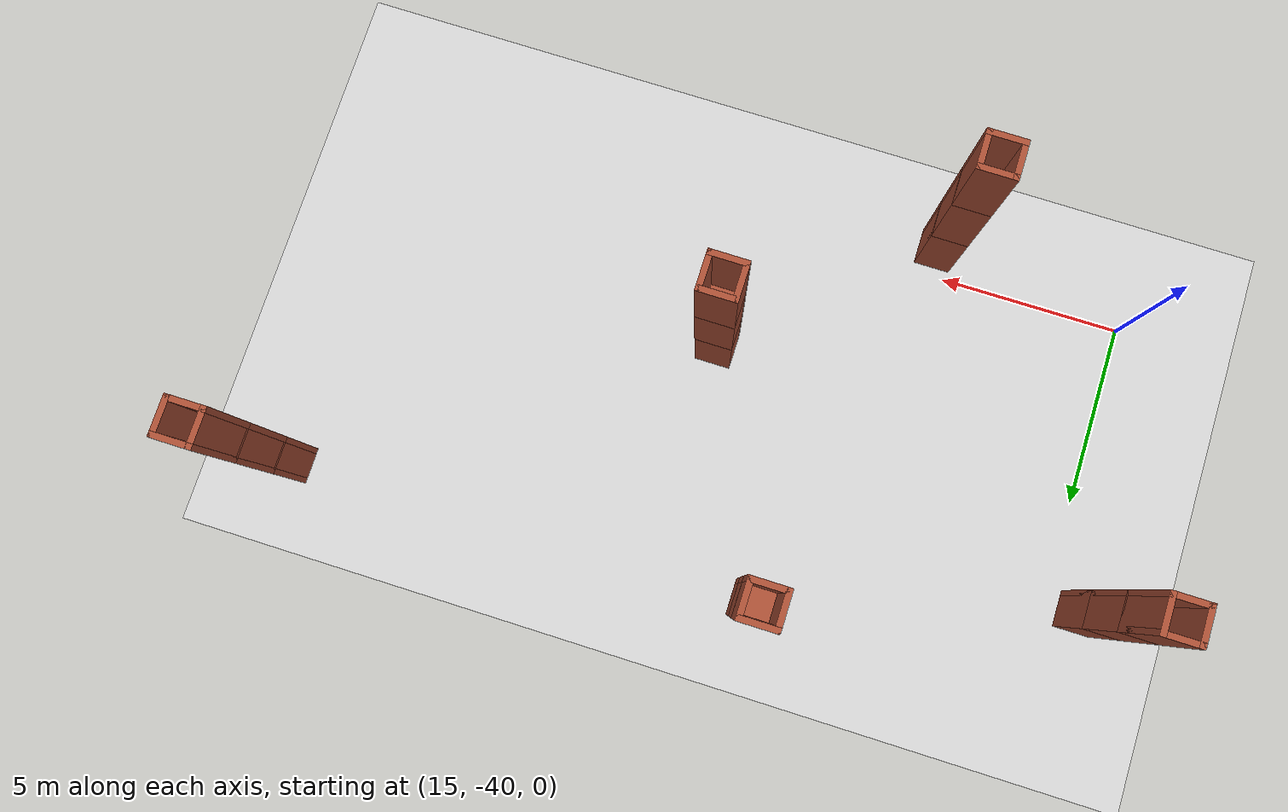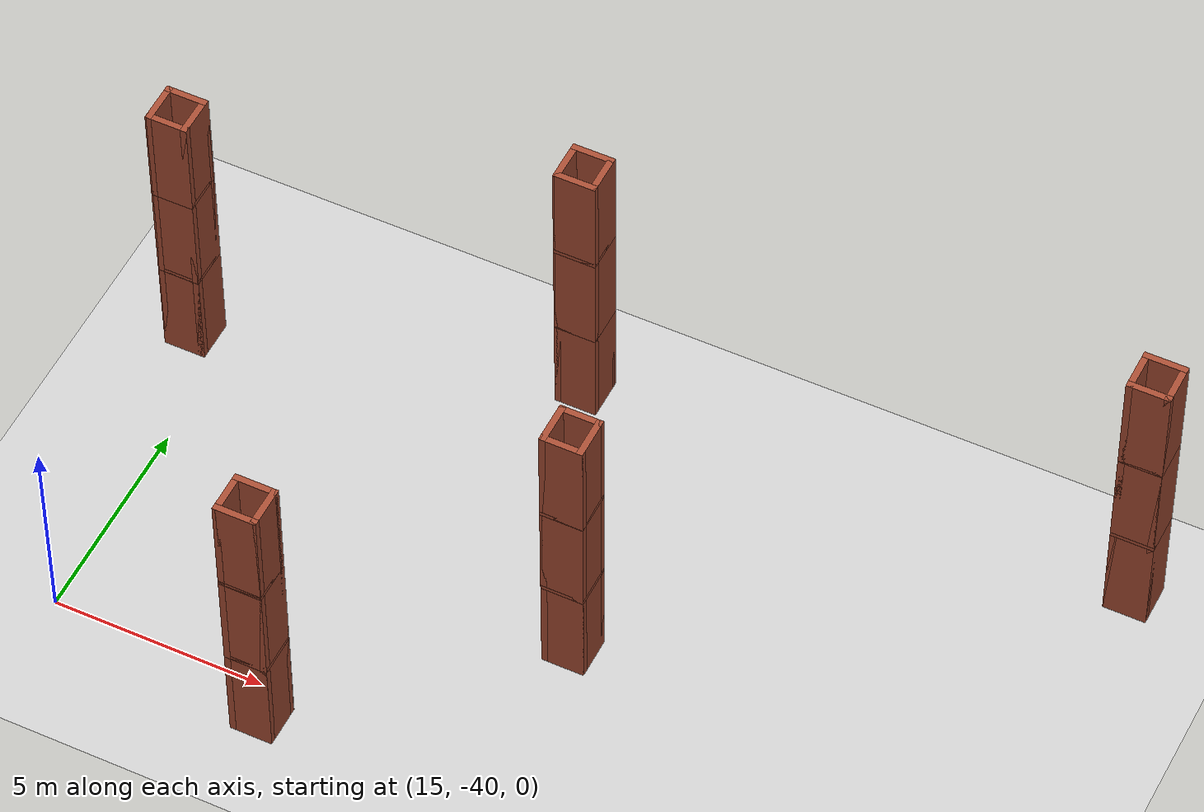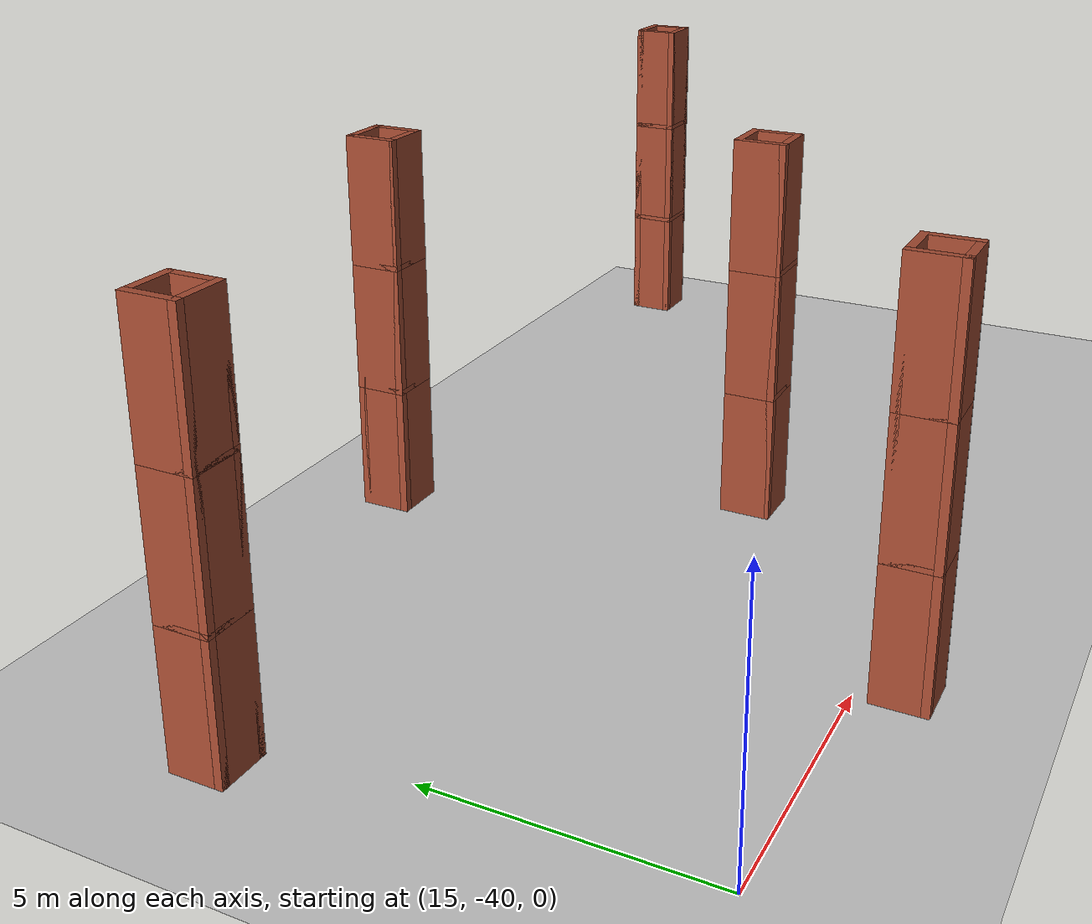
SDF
<sdf version="1.7">
 <world name="default">
  <model name="ground_plane">
   <static>1</static>
   <link name="link">
    <collision name="collision">
     <geometry><plane><normal>0 0 1</normal><size>100 100</size></plane></geometry>
     <surface>
      <contact><collide_bitmask>65535</collide_bitmask></contact>
      <friction><ode><mu>100</mu><mu2>50</mu2></ode></friction>
     </surface>
    </collision>
    <visual name="visual">
     <cast_shadows>0</cast_shadows>
     <geometry><plane><normal>0 0 1</normal><size>100 100</size></plane></geometry>
     <material>
      <script><uri>file://media/materials/scripts/gazebo.material</uri><name>Gazebo/Grey</name></script>
     </material>
    </visual>
   </link>
  </model>
  <model name="wall_model_clone_8">
   <pose>17.3275 -32.746 0 0 -0 0</pose>
   <link name="Floor_3">
    <collision name="Floor_3_Collision">
     <geometry><box><size>1 1 0.1</size></box></geometry>
     <pose>0 0 0.05 0 -0 0</pose>
    </collision>
    <visual name="Floor_3_Visual">
     <pose>0 0 0.05 0 -0 0</pose>
     <geometry><box><size>1 1 0.1</size></box></geometry>
     <material>
      <script><uri>file://media/materials/scripts/gazebo.material</uri><name>Gazebo/Bricks</name></script>
      <ambient>1 1 1 1</ambient>
     </material>
     <meta><layer>1</layer></meta>
    </visual>
    <pose>-3.21504 0.623396 2.5 0 -0 0</pose>
   </link>
   <link name="Floor_4">
    <collision name="Floor_4_Collision">
     <geometry><box><size>1 1 0.1</size></box></geometry>
     <pose>0 0 0.05 0 -0 0</pose>
    </collision>
    <visual name="Floor_4_Visual">
     <pose>0 0 0.05 0 -0 0</pose>
     <geometry><box><size>1 1 0.1</size></box></geometry>
     <material>
      <script><uri>file://media/materials/scripts/gazebo.material</uri><name>Gazebo/Bricks</name></script>
      <ambient>1 1 1 1</ambient>
     </material>
     <meta><layer>2</layer></meta>
    </visual>
    <pose>-3.21504 0.623396 5 0 -0 0</pose>
   </link>
   <link name="Wall_19">
    <collision name="Wall_19_Collision">
     <geometry><box><size>1 0.15 2.5</size></box></geometry>
     <pose>0 0 1.25 0 -0 0</pose>
    </collision>
    <visual name="Wall_19_Visual">
     <pose>0 0 1.25 0 -0 0</pose>
     <geometry><box><size>1 0.15 2.5</size></box></geometry>
     <material>
      <script><uri>file://media/materials/scripts/gazebo.material</uri><name>Gazebo/Bricks</name></script>
      <ambient>1 1 1 1</ambient>
     </material>
     <meta><layer>0</layer></meta>
    </visual>
    <pose>-3.64004 0.623396 0 0 -0 1.5708</pose>
   </link>
   <link name="Wall_21">
    <collision name="Wall_21_Collision">
     <geometry><box><size>1 0.15 2.5</size></box></geometry>
     <pose>0 0 1.25 0 -0 0</pose>
    </collision>
    <visual name="Wall_21_Visual">
     <pose>0 0 1.25 0 -0 0</pose>
     <geometry><box><size>1 0.15 2.5</size></box></geometry>
     <material>
      <script><uri>file://media/materials/scripts/gazebo.material</uri><name>Gazebo/Bricks</name></script>
      <ambient>1 1 1 1</ambient>
     </material>
     <meta><layer>0</layer></meta>
    </visual>
    <pose>-3.21504 1.0484 0 0 -0 0</pose>
   </link>
   <link name="Wall_22">
    <collision name="Wall_22_Collision">
     <geometry><box><size>1 0.15 2.5</size></box></geometry>
     <pose>0 0 1.25 0 -0 0</pose>
    </collision>
    <visual name="Wall_22_Visual">
     <pose>0 0 1.25 0 -0 0</pose>
     <geometry><box><size>1 0.15 2.5</size></box></geometry>
     <material>
      <script><uri>file://media/materials/scripts/gazebo.material</uri><name>Gazebo/Bricks</name></script>
      <ambient>1 1 1 1</ambient>
     </material>
     <meta><layer>0</layer></meta>
    </visual>
    <pose>-2.79004 0.623396 0 0 -0 -1.5708</pose>
   </link>
   <link name="Wall_23">
    <collision name="Wall_23_Collision">
     <geometry><box><size>1 0.15 2.5</size></box></geometry>
     <pose>0 0 1.25 0 -0 0</pose>
    </collision>
    <visual name="Wall_23_Visual">
     <pose>0 0 1.25 0 -0 0</pose>
     <geometry><box><size>1 0.15 2.5</size></box></geometry>
     <material>
      <script><uri>file://media/materials/scripts/gazebo.material</uri><name>Gazebo/Bricks</name></script>
      <ambient>1 1 1 1</ambient>
     </material>
     <meta><layer>0</layer></meta>
    </visual>
    <pose>-3.21504 0.198396 0 0 -0 3.14159</pose>
   </link>
   <link name="Wall_25">
    <collision name="Wall_25_Collision">
     <geometry><box><size>1 0.15 2.5</size></box></geometry>
     <pose>0 0 1.25 0 -0 0</pose>
    </collision>
    <visual name="Wall_25_Visual">
     <pose>0 0 1.25 0 -0 0</pose>
     <geometry><box><size>1 0.15 2.5</size></box></geometry>
     <material>
      <script><uri>file://media/materials/scripts/gazebo.material</uri><name>Gazebo/Bricks</name></script>
      <ambient>1 1 1 1</ambient>
     </material>
     <meta><layer>1</layer></meta>
    </visual>
    <pose>-3.64004 0.623396 2.5 0 -0 1.5708</pose>
   </link>
   <link name="Wall_26">
    <collision name="Wall_26_Collision">
     <geometry><box><size>1 0.15 2.5</size></box></geometry>
     <pose>0 0 1.25 0 -0 0</pose>
    </collision>
    <visual name="Wall_26_Visual">
     <pose>0 0 1.25 0 -0 0</pose>
     <geometry><box><size>1 0.15 2.5</size></box></geometry>
     <material>
      <script><uri>file://media/materials/scripts/gazebo.material</uri><name>Gazebo/Bricks</name></script>
      <ambient>1 1 1 1</ambient>
     </material>
     <meta><layer>1</layer></meta>
    </visual>
    <pose>-3.21504 1.0484 2.5 0 -0 0</pose>
   </link>
   <link name="Wall_27">
    <collision name="Wall_27_Collision">
     <geometry><box><size>1 0.15 2.5</size></box></geometry>
     <pose>0 0 1.25 0 -0 0</pose>
    </collision>
    <visual name="Wall_27_Visual">
     <pose>0 0 1.25 0 -0 0</pose>
     <geometry><box><size>1 0.15 2.5</size></box></geometry>
     <material>
      <script><uri>file://media/materials/scripts/gazebo.material</uri><name>Gazebo/Bricks</name></script>
      <ambient>1 1 1 1</ambient>
     </material>
     <meta><layer>1</layer></meta>
    </visual>
    <pose>-2.79004 0.623396 2.5 0 -0 -1.5708</pose>
   </link>
   <link name="Wall_28">
    <collision name="Wall_28_Collision">
     <geometry><box><size>1 0.15 2.5</size></box></geometry>
     <pose>0 0 1.25 0 -0 0</pose>
    </collision>
    <visual name="Wall_28_Visual">
     <pose>0 0 1.25 0 -0 0</pose>
     <geometry><box><size>1 0.15 2.5</size></box></geometry>
     <material>
      <script><uri>file://media/materials/scripts/gazebo.material</uri><name>Gazebo/Bricks</name></script>
      <ambient>1 1 1 1</ambient>
     </material>
     <meta><layer>1</layer></meta>
    </visual>
    <pose>-3.21504 0.198396 2.5 0 -0 3.14159</pose>
   </link>
   <link name="Wall_29">
    <collision name="Wall_29_Collision">
     <geometry><box><size>1 0.15 2.5</size></box></geometry>
     <pose>0 0 1.25 0 -0 0</pose>
    </collision>
    <visual name="Wall_29_Visual">
     <pose>0 0 1.25 0 -0 0</pose>
     <geometry><box><size>1 0.15 2.5</size></box></geometry>
     <material>
      <script><uri>file://media/materials/scripts/gazebo.material</uri><name>Gazebo/Bricks</name></script>
      <ambient>1 1 1 1</ambient>
     </material>
     <meta><layer>2</layer></meta>
    </visual>
    <pose>-3.64004 0.623396 5 0 -0 1.5708</pose>
   </link>
   <link name="Wall_30">
    <collision name="Wall_30_Collision">
     <geometry><box><size>1 0.15 2.5</size></box></geometry>
     <pose>0 0 1.25 0 -0 0</pose>
    </collision>
    <visual name="Wall_30_Visual">
     <pose>0 0 1.25 0 -0 0</pose>
     <geometry><box><size>1 0.15 2.5</size></box></geometry>
     <material>
      <script><uri>file://media/materials/scripts/gazebo.material</uri><name>Gazebo/Bricks</name></script>
      <ambient>1 1 1 1</ambient>
     </material>
     <meta><layer>2</layer></meta>
    </visual>
    <pose>-3.21504 1.0484 5 0 -0 0</pose>
   </link>
   <link name="Wall_31">
    <collision name="Wall_31_Collision">
     <geometry><box><size>1 0.15 2.5</size></box></geometry>
     <pose>0 0 1.25 0 -0 0</pose>
    </collision>
    <visual name="Wall_31_Visual">
     <pose>0 0 1.25 0 -0 0</pose>
     <geometry><box><size>1 0.15 2.5</size></box></geometry>
     <material>
      <script><uri>file://media/materials/scripts/gazebo.material</uri><name>Gazebo/Bricks</name></script>
      <ambient>1 1 1 1</ambient>
     </material>
     <meta><layer>2</layer></meta>
    </visual>
    <pose>-2.79004 0.623396 5 0 -0 -1.5708</pose>
   </link>
   <link name="Wall_32">
    <collision name="Wall_32_Collision">
     <geometry><box><size>1 0.15 2.5</size></box></geometry>
     <pose>0 0 1.25 0 -0 0</pose>
    </collision>
    <visual name="Wall_32_Visual">
     <pose>0 0 1.25 0 -0 0</pose>
     <geometry><box><size>1 0.15 2.5</size></box></geometry>
     <material>
      <script><uri>file://media/materials/scripts/gazebo.material</uri><name>Gazebo/Bricks</name></script>
      <ambient>1 1 1 1</ambient>
     </material>
     <meta><layer>2</layer></meta>
    </visual>
    <pose>-3.21504 0.198396 5 0 -0 3.14159</pose>
   </link>
   <static>1</static>
  </model>
  <model name="wall_model_clone_17">
   <pose>25.8352 -30.414 0 0 -0 0</pose>
   <link name="Floor_3">
    <collision name="Floor_3_Collision">
     <geometry><box><size>1 1 0.1</size></box></geometry>
     <pose>0 0 0.05 0 -0 0</pose>
    </collision>
    <visual name="Floor_3_Visual">
     <pose>0 0 0.05 0 -0 0</pose>
     <geometry><box><size>1 1 0.1</size></box></geometry>
     <material>
      <script><uri>file://media/materials/scripts/gazebo.material</uri><name>Gazebo/Bricks</name></script>
      <ambient>1 1 1 1</ambient>
     </material>
     <meta><layer>1</layer></meta>
    </visual>
    <pose>-3.21504 0.623396 2.5 0 -0 0</pose>
   </link>
   <link name="Floor_4">
    <collision name="Floor_4_Collision">
     <geometry><box><size>1 1 0.1</size></box></geometry>
     <pose>0 0 0.05 0 -0 0</pose>
    </collision>
    <visual name="Floor_4_Visual">
     <pose>0 0 0.05 0 -0 0</pose>
     <geometry><box><size>1 1 0.1</size></box></geometry>
     <material>
      <script><uri>file://media/materials/scripts/gazebo.material</uri><name>Gazebo/Bricks</name></script>
      <ambient>1 1 1 1</ambient>
     </material>
     <meta><layer>2</layer></meta>
    </visual>
    <pose>-3.21504 0.623396 5 0 -0 0</pose>
   </link>
   <link name="Wall_19">
    <collision name="Wall_19_Collision">
     <geometry><box><size>1 0.15 2.5</size></box></geometry>
     <pose>0 0 1.25 0 -0 0</pose>
    </collision>
    <visual name="Wall_19_Visual">
     <pose>0 0 1.25 0 -0 0</pose>
     <geometry><box><size>1 0.15 2.5</size></box></geometry>
     <material>
      <script><uri>file://media/materials/scripts/gazebo.material</uri><name>Gazebo/Bricks</name></script>
      <ambient>1 1 1 1</ambient>
     </material>
     <meta><layer>0</layer></meta>
    </visual>
    <pose>-3.64004 0.623396 0 0 -0 1.5708</pose>
   </link>
   <link name="Wall_21">
    <collision name="Wall_21_Collision">
     <geometry><box><size>1 0.15 2.5</size></box></geometry>
     <pose>0 0 1.25 0 -0 0</pose>
    </collision>
    <visual name="Wall_21_Visual">
     <pose>0 0 1.25 0 -0 0</pose>
     <geometry><box><size>1 0.15 2.5</size></box></geometry>
     <material>
      <script><uri>file://media/materials/scripts/gazebo.material</uri><name>Gazebo/Bricks</name></script>
      <ambient>1 1 1 1</ambient>
     </material>
     <meta><layer>0</layer></meta>
    </visual>
    <pose>-3.21504 1.0484 0 0 -0 0</pose>
   </link>
   <link name="Wall_22">
    <collision name="Wall_22_Collision">
     <geometry><box><size>1 0.15 2.5</size></box></geometry>
     <pose>0 0 1.25 0 -0 0</pose>
    </collision>
    <visual name="Wall_22_Visual">
     <pose>0 0 1.25 0 -0 0</pose>
     <geometry><box><size>1 0.15 2.5</size></box></geometry>
     <material>
      <script><uri>file://media/materials/scripts/gazebo.material</uri><name>Gazebo/Bricks</name></script>
      <ambient>1 1 1 1</ambient>
     </material>
     <meta><layer>0</layer></meta>
    </visual>
    <pose>-2.79004 0.623396 0 0 -0 -1.5708</pose>
   </link>
   <link name="Wall_23">
    <collision name="Wall_23_Collision">
     <geometry><box><size>1 0.15 2.5</size></box></geometry>
     <pose>0 0 1.25 0 -0 0</pose>
    </collision>
    <visual name="Wall_23_Visual">
     <pose>0 0 1.25 0 -0 0</pose>
     <geometry><box><size>1 0.15 2.5</size></box></geometry>
     <material>
      <script><uri>file://media/materials/scripts/gazebo.material</uri><name>Gazebo/Bricks</name></script>
      <ambient>1 1 1 1</ambient>
     </material>
     <meta><layer>0</layer></meta>
    </visual>
    <pose>-3.21504 0.198396 0 0 -0 3.14159</pose>
   </link>
   <link name="Wall_25">
    <collision name="Wall_25_Collision">
     <geometry><box><size>1 0.15 2.5</size></box></geometry>
     <pose>0 0 1.25 0 -0 0</pose>
    </collision>
    <visual name="Wall_25_Visual">
     <pose>0 0 1.25 0 -0 0</pose>
     <geometry><box><size>1 0.15 2.5</size></box></geometry>
     <material>
      <script><uri>file://media/materials/scripts/gazebo.material</uri><name>Gazebo/Bricks</name></script>
      <ambient>1 1 1 1</ambient>
     </material>
     <meta><layer>1</layer></meta>
    </visual>
    <pose>-3.64004 0.623396 2.5 0 -0 1.5708</pose>
   </link>
   <link name="Wall_26">
    <collision name="Wall_26_Collision">
     <geometry><box><size>1 0.15 2.5</size></box></geometry>
     <pose>0 0 1.25 0 -0 0</pose>
    </collision>
    <visual name="Wall_26_Visual">
     <pose>0 0 1.25 0 -0 0</pose>
     <geometry><box><size>1 0.15 2.5</size></box></geometry>
     <material>
      <script><uri>file://media/materials/scripts/gazebo.material</uri><name>Gazebo/Bricks</name></script>
      <ambient>1 1 1 1</ambient>
     </material>
     <meta><layer>1</layer></meta>
    </visual>
    <pose>-3.21504 1.0484 2.5 0 -0 0</pose>
   </link>
   <link name="Wall_27">
    <collision name="Wall_27_Collision">
     <geometry><box><size>1 0.15 2.5</size></box></geometry>
     <pose>0 0 1.25 0 -0 0</pose>
    </collision>
    <visual name="Wall_27_Visual">
     <pose>0 0 1.25 0 -0 0</pose>
     <geometry><box><size>1 0.15 2.5</size></box></geometry>
     <material>
      <script><uri>file://media/materials/scripts/gazebo.material</uri><name>Gazebo/Bricks</name></script>
      <ambient>1 1 1 1</ambient>
     </material>
     <meta><layer>1</layer></meta>
    </visual>
    <pose>-2.79004 0.623396 2.5 0 -0 -1.5708</pose>
   </link>
   <link name="Wall_28">
    <collision name="Wall_28_Collision">
     <geometry><box><size>1 0.15 2.5</size></box></geometry>
     <pose>0 0 1.25 0 -0 0</pose>
    </collision>
    <visual name="Wall_28_Visual">
     <pose>0 0 1.25 0 -0 0</pose>
     <geometry><box><size>1 0.15 2.5</size></box></geometry>
     <material>
      <script><uri>file://media/materials/scripts/gazebo.material</uri><name>Gazebo/Bricks</name></script>
      <ambient>1 1 1 1</ambient>
     </material>
     <meta><layer>1</layer></meta>
    </visual>
    <pose>-3.21504 0.198396 2.5 0 -0 3.14159</pose>
   </link>
   <link name="Wall_29">
    <collision name="Wall_29_Collision">
     <geometry><box><size>1 0.15 2.5</size></box></geometry>
     <pose>0 0 1.25 0 -0 0</pose>
    </collision>
    <visual name="Wall_29_Visual">
     <pose>0 0 1.25 0 -0 0</pose>
     <geometry><box><size>1 0.15 2.5</size></box></geometry>
     <material>
      <script><uri>file://media/materials/scripts/gazebo.material</uri><name>Gazebo/Bricks</name></script>
      <ambient>1 1 1 1</ambient>
     </material>
     <meta><layer>2</layer></meta>
    </visual>
    <pose>-3.64004 0.623396 5 0 -0 1.5708</pose>
   </link>
   <link name="Wall_30">
    <collision name="Wall_30_Collision">
     <geometry><box><size>1 0.15 2.5</size></box></geometry>
     <pose>0 0 1.25 0 -0 0</pose>
    </collision>
    <visual name="Wall_30_Visual">
     <pose>0 0 1.25 0 -0 0</pose>
     <geometry><box><size>1 0.15 2.5</size></box></geometry>
     <material>
      <script><uri>file://media/materials/scripts/gazebo.material</uri><name>Gazebo/Bricks</name></script>
      <ambient>1 1 1 1</ambient>
     </material>
     <meta><layer>2</layer></meta>
    </visual>
    <pose>-3.21504 1.0484 5 0 -0 0</pose>
   </link>
   <link name="Wall_31">
    <collision name="Wall_31_Collision">
     <geometry><box><size>1 0.15 2.5</size></box></geometry>
     <pose>0 0 1.25 0 -0 0</pose>
    </collision>
    <visual name="Wall_31_Visual">
     <pose>0 0 1.25 0 -0 0</pose>
     <geometry><box><size>1 0.15 2.5</size></box></geometry>
     <material>
      <script><uri>file://media/materials/scripts/gazebo.material</uri><name>Gazebo/Bricks</name></script>
      <ambient>1 1 1 1</ambient>
     </material>
     <meta><layer>2</layer></meta>
    </visual>
    <pose>-2.79004 0.623396 5 0 -0 -1.5708</pose>
   </link>
   <link name="Wall_32">
    <collision name="Wall_32_Collision">
     <geometry><box><size>1 0.15 2.5</size></box></geometry>
     <pose>0 0 1.25 0 -0 0</pose>
    </collision>
    <visual name="Wall_32_Visual">
     <pose>0 0 1.25 0 -0 0</pose>
     <geometry><box><size>1 0.15 2.5</size></box></geometry>
     <material>
      <script><uri>file://media/materials/scripts/gazebo.material</uri><name>Gazebo/Bricks</name></script>
      <ambient>1 1 1 1</ambient>
     </material>
     <meta><layer>2</layer></meta>
    </visual>
    <pose>-3.21504 0.198396 5 0 -0 3.14159</pose>
   </link>
   <static>1</static>
  </model>
  <model name="wall_model_clone_20">
   <pose>28.741 -36.9002 0 0 -0 0</pose>
   <link name="Floor_3">
    <collision name="Floor_3_Collision">
     <geometry><box><size>1 1 0.1</size></box></geometry>
     <pose>0 0 0.05 0 -0 0</pose>
    </collision>
    <visual name="Floor_3_Visual">
     <pose>0 0 0.05 0 -0 0</pose>
     <geometry><box><size>1 1 0.1</size></box></geometry>
     <material>
      <script><uri>file://media/materials/scripts/gazebo.material</uri><name>Gazebo/Bricks</name></script>
      <ambient>1 1 1 1</ambient>
     </material>
     <meta><layer>1</layer></meta>
    </visual>
    <pose>-3.21504 0.623396 2.5 0 -0 0</pose>
   </link>
   <link name="Floor_4">
    <collision name="Floor_4_Collision">
     <geometry><box><size>1 1 0.1</size></box></geometry>
     <pose>0 0 0.05 0 -0 0</pose>
    </collision>
    <visual name="Floor_4_Visual">
     <pose>0 0 0.05 0 -0 0</pose>
     <geometry><box><size>1 1 0.1</size></box></geometry>
     <material>
      <script><uri>file://media/materials/scripts/gazebo.material</uri><name>Gazebo/Bricks</name></script>
      <ambient>1 1 1 1</ambient>
     </material>
     <meta><layer>2</layer></meta>
    </visual>
    <pose>-3.21504 0.623396 5 0 -0 0</pose>
   </link>
   <link name="Wall_19">
    <collision name="Wall_19_Collision">
     <geometry><box><size>1 0.15 2.5</size></box></geometry>
     <pose>0 0 1.25 0 -0 0</pose>
    </collision>
    <visual name="Wall_19_Visual">
     <pose>0 0 1.25 0 -0 0</pose>
     <geometry><box><size>1 0.15 2.5</size></box></geometry>
     <material>
      <script><uri>file://media/materials/scripts/gazebo.material</uri><name>Gazebo/Bricks</name></script>
      <ambient>1 1 1 1</ambient>
     </material>
     <meta><layer>0</layer></meta>
    </visual>
    <pose>-3.64004 0.623396 0 0 -0 1.5708</pose>
   </link>
   <link name="Wall_21">
    <collision name="Wall_21_Collision">
     <geometry><box><size>1 0.15 2.5</size></box></geometry>
     <pose>0 0 1.25 0 -0 0</pose>
    </collision>
    <visual name="Wall_21_Visual">
     <pose>0 0 1.25 0 -0 0</pose>
     <geometry><box><size>1 0.15 2.5</size></box></geometry>
     <material>
      <script><uri>file://media/materials/scripts/gazebo.material</uri><name>Gazebo/Bricks</name></script>
      <ambient>1 1 1 1</ambient>
     </material>
     <meta><layer>0</layer></meta>
    </visual>
    <pose>-3.21504 1.0484 0 0 -0 0</pose>
   </link>
   <link name="Wall_22">
    <collision name="Wall_22_Collision">
     <geometry><box><size>1 0.15 2.5</size></box></geometry>
     <pose>0 0 1.25 0 -0 0</pose>
    </collision>
    <visual name="Wall_22_Visual">
     <pose>0 0 1.25 0 -0 0</pose>
     <geometry><box><size>1 0.15 2.5</size></box></geometry>
     <material>
      <script><uri>file://media/materials/scripts/gazebo.material</uri><name>Gazebo/Bricks</name></script>
      <ambient>1 1 1 1</ambient>
     </material>
     <meta><layer>0</layer></meta>
    </visual>
    <pose>-2.79004 0.623396 0 0 -0 -1.5708</pose>
   </link>
   <link name="Wall_23">
    <collision name="Wall_23_Collision">
     <geometry><box><size>1 0.15 2.5</size></box></geometry>
     <pose>0 0 1.25 0 -0 0</pose>
    </collision>
    <visual name="Wall_23_Visual">
     <pose>0 0 1.25 0 -0 0</pose>
     <geometry><box><size>1 0.15 2.5</size></box></geometry>
     <material>
      <script><uri>file://media/materials/scripts/gazebo.material</uri><name>Gazebo/Bricks</name></script>
      <ambient>1 1 1 1</ambient>
     </material>
     <meta><layer>0</layer></meta>
    </visual>
    <pose>-3.21504 0.198396 0 0 -0 3.14159</pose>
   </link>
   <link name="Wall_25">
    <collision name="Wall_25_Collision">
     <geometry><box><size>1 0.15 2.5</size></box></geometry>
     <pose>0 0 1.25 0 -0 0</pose>
    </collision>
    <visual name="Wall_25_Visual">
     <pose>0 0 1.25 0 -0 0</pose>
     <geometry><box><size>1 0.15 2.5</size></box></geometry>
     <material>
      <script><uri>file://media/materials/scripts/gazebo.material</uri><name>Gazebo/Bricks</name></script>
      <ambient>1 1 1 1</ambient>
     </material>
     <meta><layer>1</layer></meta>
    </visual>
    <pose>-3.64004 0.623396 2.5 0 -0 1.5708</pose>
   </link>
   <link name="Wall_26">
    <collision name="Wall_26_Collision">
     <geometry><box><size>1 0.15 2.5</size></box></geometry>
     <pose>0 0 1.25 0 -0 0</pose>
    </collision>
    <visual name="Wall_26_Visual">
     <pose>0 0 1.25 0 -0 0</pose>
     <geometry><box><size>1 0.15 2.5</size></box></geometry>
     <material>
      <script><uri>file://media/materials/scripts/gazebo.material</uri><name>Gazebo/Bricks</name></script>
      <ambient>1 1 1 1</ambient>
     </material>
     <meta><layer>1</layer></meta>
    </visual>
    <pose>-3.21504 1.0484 2.5 0 -0 0</pose>
   </link>
   <link name="Wall_27">
    <collision name="Wall_27_Collision">
     <geometry><box><size>1 0.15 2.5</size></box></geometry>
     <pose>0 0 1.25 0 -0 0</pose>
    </collision>
    <visual name="Wall_27_Visual">
     <pose>0 0 1.25 0 -0 0</pose>
     <geometry><box><size>1 0.15 2.5</size></box></geometry>
     <material>
      <script><uri>file://media/materials/scripts/gazebo.material</uri><name>Gazebo/Bricks</name></script>
      <ambient>1 1 1 1</ambient>
     </material>
     <meta><layer>1</layer></meta>
    </visual>
    <pose>-2.79004 0.623396 2.5 0 -0 -1.5708</pose>
   </link>
   <link name="Wall_28">
    <collision name="Wall_28_Collision">
     <geometry><box><size>1 0.15 2.5</size></box></geometry>
     <pose>0 0 1.25 0 -0 0</pose>
    </collision>
    <visual name="Wall_28_Visual">
     <pose>0 0 1.25 0 -0 0</pose>
     <geometry><box><size>1 0.15 2.5</size></box></geometry>
     <material>
      <script><uri>file://media/materials/scripts/gazebo.material</uri><name>Gazebo/Bricks</name></script>
      <ambient>1 1 1 1</ambient>
     </material>
     <meta><layer>1</layer></meta>
    </visual>
    <pose>-3.21504 0.198396 2.5 0 -0 3.14159</pose>
   </link>
   <link name="Wall_29">
    <collision name="Wall_29_Collision">
     <geometry><box><size>1 0.15 2.5</size></box></geometry>
     <pose>0 0 1.25 0 -0 0</pose>
    </collision>
    <visual name="Wall_29_Visual">
     <pose>0 0 1.25 0 -0 0</pose>
     <geometry><box><size>1 0.15 2.5</size></box></geometry>
     <material>
      <script><uri>file://media/materials/scripts/gazebo.material</uri><name>Gazebo/Bricks</name></script>
      <ambient>1 1 1 1</ambient>
     </material>
     <meta><layer>2</layer></meta>
    </visual>
    <pose>-3.64004 0.623396 5 0 -0 1.5708</pose>
   </link>
   <link name="Wall_30">
    <collision name="Wall_30_Collision">
     <geometry><box><size>1 0.15 2.5</size></box></geometry>
     <pose>0 0 1.25 0 -0 0</pose>
    </collision>
    <visual name="Wall_30_Visual">
     <pose>0 0 1.25 0 -0 0</pose>
     <geometry><box><size>1 0.15 2.5</size></box></geometry>
     <material>
      <script><uri>file://media/materials/scripts/gazebo.material</uri><name>Gazebo/Bricks</name></script>
      <ambient>1 1 1 1</ambient>
     </material>
     <meta><layer>2</layer></meta>
    </visual>
    <pose>-3.21504 1.0484 5 0 -0 0</pose>
   </link>
   <link name="Wall_31">
    <collision name="Wall_31_Collision">
     <geometry><box><size>1 0.15 2.5</size></box></geometry>
     <pose>0 0 1.25 0 -0 0</pose>
    </collision>
    <visual name="Wall_31_Visual">
     <pose>0 0 1.25 0 -0 0</pose>
     <geometry><box><size>1 0.15 2.5</size></box></geometry>
     <material>
      <script><uri>file://media/materials/scripts/gazebo.material</uri><name>Gazebo/Bricks</name></script>
      <ambient>1 1 1 1</ambient>
     </material>
     <meta><layer>2</layer></meta>
    </visual>
    <pose>-2.79004 0.623396 5 0 -0 -1.5708</pose>
   </link>
   <link name="Wall_32">
    <collision name="Wall_32_Collision">
     <geometry><box><size>1 0.15 2.5</size></box></geometry>
     <pose>0 0 1.25 0 -0 0</pose>
    </collision>
    <visual name="Wall_32_Visual">
     <pose>0 0 1.25 0 -0 0</pose>
     <geometry><box><size>1 0.15 2.5</size></box></geometry>
     <material>
      <script><uri>file://media/materials/scripts/gazebo.material</uri><name>Gazebo/Bricks</name></script>
      <ambient>1 1 1 1</ambient>
     </material>
     <meta><layer>2</layer></meta>
    </visual>
    <pose>-3.21504 0.198396 5 0 -0 3.14159</pose>
   </link>
   <static>1</static>
  </model>
  <model name="wall_model_clone_26">
   <pose>23.6353 -41.3918 0 0 -0 0</pose>
   <link name="Floor_3">
    <collision name="Floor_3_Collision">
     <geometry><box><size>1 1 0.1</size></box></geometry>
     <pose>0 0 0.05 0 -0 0</pose>
    </collision>
    <visual name="Floor_3_Visual">
     <pose>0 0 0.05 0 -0 0</pose>
     <geometry><box><size>1 1 0.1</size></box></geometry>
     <material>
      <script><uri>file://media/materials/scripts/gazebo.material</uri><name>Gazebo/Bricks</name></script>
      <ambient>1 1 1 1</ambient>
     </material>
     <meta><layer>1</layer></meta>
    </visual>
    <pose>-3.21504 0.623396 2.5 0 -0 0</pose>
   </link>
   <link name="Floor_4">
    <collision name="Floor_4_Collision">
     <geometry><box><size>1 1 0.1</size></box></geometry>
     <pose>0 0 0.05 0 -0 0</pose>
    </collision>
    <visual name="Floor_4_Visual">
     <pose>0 0 0.05 0 -0 0</pose>
     <geometry><box><size>1 1 0.1</size></box></geometry>
     <material>
      <script><uri>file://media/materials/scripts/gazebo.material</uri><name>Gazebo/Bricks</name></script>
      <ambient>1 1 1 1</ambient>
     </material>
     <meta><layer>2</layer></meta>
    </visual>
    <pose>-3.21504 0.623396 5 0 -0 0</pose>
   </link>
   <link name="Wall_19">
    <collision name="Wall_19_Collision">
     <geometry><box><size>1 0.15 2.5</size></box></geometry>
     <pose>0 0 1.25 0 -0 0</pose>
    </collision>
    <visual name="Wall_19_Visual">
     <pose>0 0 1.25 0 -0 0</pose>
     <geometry><box><size>1 0.15 2.5</size></box></geometry>
     <material>
      <script><uri>file://media/materials/scripts/gazebo.material</uri><name>Gazebo/Bricks</name></script>
      <ambient>1 1 1 1</ambient>
     </material>
     <meta><layer>0</layer></meta>
    </visual>
    <pose>-3.64004 0.623396 0 0 -0 1.5708</pose>
   </link>
   <link name="Wall_21">
    <collision name="Wall_21_Collision">
     <geometry><box><size>1 0.15 2.5</size></box></geometry>
     <pose>0 0 1.25 0 -0 0</pose>
    </collision>
    <visual name="Wall_21_Visual">
     <pose>0 0 1.25 0 -0 0</pose>
     <geometry><box><size>1 0.15 2.5</size></box></geometry>
     <material>
      <script><uri>file://media/materials/scripts/gazebo.material</uri><name>Gazebo/Bricks</name></script>
      <ambient>1 1 1 1</ambient>
     </material>
     <meta><layer>0</layer></meta>
    </visual>
    <pose>-3.21504 1.0484 0 0 -0 0</pose>
   </link>
   <link name="Wall_22">
    <collision name="Wall_22_Collision">
     <geometry><box><size>1 0.15 2.5</size></box></geometry>
     <pose>0 0 1.25 0 -0 0</pose>
    </collision>
    <visual name="Wall_22_Visual">
     <pose>0 0 1.25 0 -0 0</pose>
     <geometry><box><size>1 0.15 2.5</size></box></geometry>
     <material>
      <script><uri>file://media/materials/scripts/gazebo.material</uri><name>Gazebo/Bricks</name></script>
      <ambient>1 1 1 1</ambient>
     </material>
     <meta><layer>0</layer></meta>
    </visual>
    <pose>-2.79004 0.623396 0 0 -0 -1.5708</pose>
   </link>
   <link name="Wall_23">
    <collision name="Wall_23_Collision">
     <geometry><box><size>1 0.15 2.5</size></box></geometry>
     <pose>0 0 1.25 0 -0 0</pose>
    </collision>
    <visual name="Wall_23_Visual">
     <pose>0 0 1.25 0 -0 0</pose>
     <geometry><box><size>1 0.15 2.5</size></box></geometry>
     <material>
      <script><uri>file://media/materials/scripts/gazebo.material</uri><name>Gazebo/Bricks</name></script>
      <ambient>1 1 1 1</ambient>
     </material>
     <meta><layer>0</layer></meta>
    </visual>
    <pose>-3.21504 0.198396 0 0 -0 3.14159</pose>
   </link>
   <link name="Wall_25">
    <collision name="Wall_25_Collision">
     <geometry><box><size>1 0.15 2.5</size></box></geometry>
     <pose>0 0 1.25 0 -0 0</pose>
    </collision>
    <visual name="Wall_25_Visual">
     <pose>0 0 1.25 0 -0 0</pose>
     <geometry><box><size>1 0.15 2.5</size></box></geometry>
     <material>
      <script><uri>file://media/materials/scripts/gazebo.material</uri><name>Gazebo/Bricks</name></script>
      <ambient>1 1 1 1</ambient>
     </material>
     <meta><layer>1</layer></meta>
    </visual>
    <pose>-3.64004 0.623396 2.5 0 -0 1.5708</pose>
   </link>
   <link name="Wall_26">
    <collision name="Wall_26_Collision">
     <geometry><box><size>1 0.15 2.5</size></box></geometry>
     <pose>0 0 1.25 0 -0 0</pose>
    </collision>
    <visual name="Wall_26_Visual">
     <pose>0 0 1.25 0 -0 0</pose>
     <geometry><box><size>1 0.15 2.5</size></box></geometry>
     <material>
      <script><uri>file://media/materials/scripts/gazebo.material</uri><name>Gazebo/Bricks</name></script>
      <ambient>1 1 1 1</ambient>
     </material>
     <meta><layer>1</layer></meta>
    </visual>
    <pose>-3.21504 1.0484 2.5 0 -0 0</pose>
   </link>
   <link name="Wall_27">
    <collision name="Wall_27_Collision">
     <geometry><box><size>1 0.15 2.5</size></box></geometry>
     <pose>0 0 1.25 0 -0 0</pose>
    </collision>
    <visual name="Wall_27_Visual">
     <pose>0 0 1.25 0 -0 0</pose>
     <geometry><box><size>1 0.15 2.5</size></box></geometry>
     <material>
      <script><uri>file://media/materials/scripts/gazebo.material</uri><name>Gazebo/Bricks</name></script>
      <ambient>1 1 1 1</ambient>
     </material>
     <meta><layer>1</layer></meta>
    </visual>
    <pose>-2.79004 0.623396 2.5 0 -0 -1.5708</pose>
   </link>
   <link name="Wall_28">
    <collision name="Wall_28_Collision">
     <geometry><box><size>1 0.15 2.5</size></box></geometry>
     <pose>0 0 1.25 0 -0 0</pose>
    </collision>
    <visual name="Wall_28_Visual">
     <pose>0 0 1.25 0 -0 0</pose>
     <geometry><box><size>1 0.15 2.5</size></box></geometry>
     <material>
      <script><uri>file://media/materials/scripts/gazebo.material</uri><name>Gazebo/Bricks</name></script>
      <ambient>1 1 1 1</ambient>
     </material>
     <meta><layer>1</layer></meta>
    </visual>
    <pose>-3.21504 0.198396 2.5 0 -0 3.14159</pose>
   </link>
   <link name="Wall_29">
    <collision name="Wall_29_Collision">
     <geometry><box><size>1 0.15 2.5</size></box></geometry>
     <pose>0 0 1.25 0 -0 0</pose>
    </collision>
    <visual name="Wall_29_Visual">
     <pose>0 0 1.25 0 -0 0</pose>
     <geometry><box><size>1 0.15 2.5</size></box></geometry>
     <material>
      <script><uri>file://media/materials/scripts/gazebo.material</uri><name>Gazebo/Bricks</name></script>
      <ambient>1 1 1 1</ambient>
     </material>
     <meta><layer>2</layer></meta>
    </visual>
    <pose>-3.64004 0.623396 5 0 -0 1.5708</pose>
   </link>
   <link name="Wall_30">
    <collision name="Wall_30_Collision">
     <geometry><box><size>1 0.15 2.5</size></box></geometry>
     <pose>0 0 1.25 0 -0 0</pose>
    </collision>
    <visual name="Wall_30_Visual">
     <pose>0 0 1.25 0 -0 0</pose>
     <geometry><box><size>1 0.15 2.5</size></box></geometry>
     <material>
      <script><uri>file://media/materials/scripts/gazebo.material</uri><name>Gazebo/Bricks</name></script>
      <ambient>1 1 1 1</ambient>
     </material>
     <meta><layer>2</layer></meta>
    </visual>
    <pose>-3.21504 1.0484 5 0 -0 0</pose>
   </link>
   <link name="Wall_31">
    <collision name="Wall_31_Collision">
     <geometry><box><size>1 0.15 2.5</size></box></geometry>
     <pose>0 0 1.25 0 -0 0</pose>
    </collision>
    <visual name="Wall_31_Visual">
     <pose>0 0 1.25 0 -0 0</pose>
     <geometry><box><size>1 0.15 2.5</size></box></geometry>
     <material>
      <script><uri>file://media/materials/scripts/gazebo.material</uri><name>Gazebo/Bricks</name></script>
      <ambient>1 1 1 1</ambient>
     </material>
     <meta><layer>2</layer></meta>
    </visual>
    <pose>-2.79004 0.623396 5 0 -0 -1.5708</pose>
   </link>
   <link name="Wall_32">
    <collision name="Wall_32_Collision">
     <geometry><box><size>1 0.15 2.5</size></box></geometry>
     <pose>0 0 1.25 0 -0 0</pose>
    </collision>
    <visual name="Wall_32_Visual">
     <pose>0 0 1.25 0 -0 0</pose>
     <geometry><box><size>1 0.15 2.5</size></box></geometry>
     <material>
      <script><uri>file://media/materials/scripts/gazebo.material</uri><name>Gazebo/Bricks</name></script>
      <ambient>1 1 1 1</ambient>
     </material>
     <meta><layer>2</layer></meta>
    </visual>
    <pose>-3.21504 0.198396 5 0 -0 3.14159</pose>
   </link>
   <static>1</static>
  </model>
  <model name="wall_model_clone_27">
   <pose>38.9099 -30.36 0 0 -0 0</pose>
   <link name="Floor_3">
    <collision name="Floor_3_Collision">
     <geometry><box><size>1 1 0.1</size></box></geometry>
     <pose>0 0 0.05 0 -0 0</pose>
    </collision>
    <visual name="Floor_3_Visual">
     <pose>0 0 0.05 0 -0 0</pose>
     <geometry><box><size>1 1 0.1</size></box></geometry>
     <material>
      <script><uri>file://media/materials/scripts/gazebo.material</uri><name>Gazebo/Bricks</name></script>
      <ambient>1 1 1 1</ambient>
     </material>
     <meta><layer>1</layer></meta>
    </visual>
    <pose>-3.21504 0.623396 2.5 0 -0 0</pose>
   </link>
   <link name="Floor_4">
    <collision name="Floor_4_Collision">
     <geometry><box><size>1 1 0.1</size></box></geometry>
     <pose>0 0 0.05 0 -0 0</pose>
    </collision>
    <visual name="Floor_4_Visual">
     <pose>0 0 0.05 0 -0 0</pose>
     <geometry><box><size>1 1 0.1</size></box></geometry>
     <material>
      <script><uri>file://media/materials/scripts/gazebo.material</uri><name>Gazebo/Bricks</name></script>
      <ambient>1 1 1 1</ambient>
     </material>
     <meta><layer>2</layer></meta>
    </visual>
    <pose>-3.21504 0.623396 5 0 -0 0</pose>
   </link>
   <link name="Wall_19">
    <collision name="Wall_19_Collision">
     <geometry><box><size>1 0.15 2.5</size></box></geometry>
     <pose>0 0 1.25 0 -0 0</pose>
    </collision>
    <visual name="Wall_19_Visual">
     <pose>0 0 1.25 0 -0 0</pose>
     <geometry><box><size>1 0.15 2.5</size></box></geometry>
     <material>
      <script><uri>file://media/materials/scripts/gazebo.material</uri><name>Gazebo/Bricks</name></script>
      <ambient>1 1 1 1</ambient>
     </material>
     <meta><layer>0</layer></meta>
    </visual>
    <pose>-3.64004 0.623396 0 0 -0 1.5708</pose>
   </link>
   <link name="Wall_21">
    <collision name="Wall_21_Collision">
     <geometry><box><size>1 0.15 2.5</size></box></geometry>
     <pose>0 0 1.25 0 -0 0</pose>
    </collision>
    <visual name="Wall_21_Visual">
     <pose>0 0 1.25 0 -0 0</pose>
     <geometry><box><size>1 0.15 2.5</size></box></geometry>
     <material>
      <script><uri>file://media/materials/scripts/gazebo.material</uri><name>Gazebo/Bricks</name></script>
      <ambient>1 1 1 1</ambient>
     </material>
     <meta><layer>0</layer></meta>
    </visual>
    <pose>-3.21504 1.0484 0 0 -0 0</pose>
   </link>
   <link name="Wall_22">
    <collision name="Wall_22_Collision">
     <geometry><box><size>1 0.15 2.5</size></box></geometry>
     <pose>0 0 1.25 0 -0 0</pose>
    </collision>
    <visual name="Wall_22_Visual">
     <pose>0 0 1.25 0 -0 0</pose>
     <geometry><box><size>1 0.15 2.5</size></box></geometry>
     <material>
      <script><uri>file://media/materials/scripts/gazebo.material</uri><name>Gazebo/Bricks</name></script>
      <ambient>1 1 1 1</ambient>
     </material>
     <meta><layer>0</layer></meta>
    </visual>
    <pose>-2.79004 0.623396 0 0 -0 -1.5708</pose>
   </link>
   <link name="Wall_23">
    <collision name="Wall_23_Collision">
     <geometry><box><size>1 0.15 2.5</size></box></geometry>
     <pose>0 0 1.25 0 -0 0</pose>
    </collision>
    <visual name="Wall_23_Visual">
     <pose>0 0 1.25 0 -0 0</pose>
     <geometry><box><size>1 0.15 2.5</size></box></geometry>
     <material>
      <script><uri>file://media/materials/scripts/gazebo.material</uri><name>Gazebo/Bricks</name></script>
      <ambient>1 1 1 1</ambient>
     </material>
     <meta><layer>0</layer></meta>
    </visual>
    <pose>-3.21504 0.198396 0 0 -0 3.14159</pose>
   </link>
   <link name="Wall_25">
    <collision name="Wall_25_Collision">
     <geometry><box><size>1 0.15 2.5</size></box></geometry>
     <pose>0 0 1.25 0 -0 0</pose>
    </collision>
    <visual name="Wall_25_Visual">
     <pose>0 0 1.25 0 -0 0</pose>
     <geometry><box><size>1 0.15 2.5</size></box></geometry>
     <material>
      <script><uri>file://media/materials/scripts/gazebo.material</uri><name>Gazebo/Bricks</name></script>
      <ambient>1 1 1 1</ambient>
     </material>
     <meta><layer>1</layer></meta>
    </visual>
    <pose>-3.64004 0.623396 2.5 0 -0 1.5708</pose>
   </link>
   <link name="Wall_26">
    <collision name="Wall_26_Collision">
     <geometry><box><size>1 0.15 2.5</size></box></geometry>
     <pose>0 0 1.25 0 -0 0</pose>
    </collision>
    <visual name="Wall_26_Visual">
     <pose>0 0 1.25 0 -0 0</pose>
     <geometry><box><size>1 0.15 2.5</size></box></geometry>
     <material>
      <script><uri>file://media/materials/scripts/gazebo.material</uri><name>Gazebo/Bricks</name></script>
      <ambient>1 1 1 1</ambient>
     </material>
     <meta><layer>1</layer></meta>
    </visual>
    <pose>-3.21504 1.0484 2.5 0 -0 0</pose>
   </link>
   <link name="Wall_27">
    <collision name="Wall_27_Collision">
     <geometry><box><size>1 0.15 2.5</size></box></geometry>
     <pose>0 0 1.25 0 -0 0</pose>
    </collision>
    <visual name="Wall_27_Visual">
     <pose>0 0 1.25 0 -0 0</pose>
     <geometry><box><size>1 0.15 2.5</size></box></geometry>
     <material>
      <script><uri>file://media/materials/scripts/gazebo.material</uri><name>Gazebo/Bricks</name></script>
      <ambient>1 1 1 1</ambient>
     </material>
     <meta><layer>1</layer></meta>
    </visual>
    <pose>-2.79004 0.623396 2.5 0 -0 -1.5708</pose>
   </link>
   <link name="Wall_28">
    <collision name="Wall_28_Collision">
     <geometry><box><size>1 0.15 2.5</size></box></geometry>
     <pose>0 0 1.25 0 -0 0</pose>
    </collision>
    <visual name="Wall_28_Visual">
     <pose>0 0 1.25 0 -0 0</pose>
     <geometry><box><size>1 0.15 2.5</size></box></geometry>
     <material>
      <script><uri>file://media/materials/scripts/gazebo.material</uri><name>Gazebo/Bricks</name></script>
      <ambient>1 1 1 1</ambient>
     </material>
     <meta><layer>1</layer></meta>
    </visual>
    <pose>-3.21504 0.198396 2.5 0 -0 3.14159</pose>
   </link>
   <link name="Wall_29">
    <collision name="Wall_29_Collision">
     <geometry><box><size>1 0.15 2.5</size></box></geometry>
     <pose>0 0 1.25 0 -0 0</pose>
    </collision>
    <visual name="Wall_29_Visual">
     <pose>0 0 1.25 0 -0 0</pose>
     <geometry><box><size>1 0.15 2.5</size></box></geometry>
     <material>
      <script><uri>file://media/materials/scripts/gazebo.material</uri><name>Gazebo/Bricks</name></script>
      <ambient>1 1 1 1</ambient>
     </material>
     <meta><layer>2</layer></meta>
    </visual>
    <pose>-3.64004 0.623396 5 0 -0 1.5708</pose>
   </link>
   <link name="Wall_30">
    <collision name="Wall_30_Collision">
     <geometry><box><size>1 0.15 2.5</size></box></geometry>
     <pose>0 0 1.25 0 -0 0</pose>
    </collision>
    <visual name="Wall_30_Visual">
     <pose>0 0 1.25 0 -0 0</pose>
     <geometry><box><size>1 0.15 2.5</size></box></geometry>
     <material>
      <script><uri>file://media/materials/scripts/gazebo.material</uri><name>Gazebo/Bricks</name></script>
      <ambient>1 1 1 1</ambient>
     </material>
     <meta><layer>2</layer></meta>
    </visual>
    <pose>-3.21504 1.0484 5 0 -0 0</pose>
   </link>
   <link name="Wall_31">
    <collision name="Wall_31_Collision">
     <geometry><box><size>1 0.15 2.5</size></box></geometry>
     <pose>0 0 1.25 0 -0 0</pose>
    </collision>
    <visual name="Wall_31_Visual">
     <pose>0 0 1.25 0 -0 0</pose>
     <geometry><box><size>1 0.15 2.5</size></box></geometry>
     <material>
      <script><uri>file://media/materials/scripts/gazebo.material</uri><name>Gazebo/Bricks</name></script>
      <ambient>1 1 1 1</ambient>
     </material>
     <meta><layer>2</layer></meta>
    </visual>
    <pose>-2.79004 0.623396 5 0 -0 -1.5708</pose>
   </link>
   <link name="Wall_32">
    <collision name="Wall_32_Collision">
     <geometry><box><size>1 0.15 2.5</size></box></geometry>
     <pose>0 0 1.25 0 -0 0</pose>
    </collision>
    <visual name="Wall_32_Visual">
     <pose>0 0 1.25 0 -0 0</pose>
     <geometry><box><size>1 0.15 2.5</size></box></geometry>
     <material>
      <script><uri>file://media/materials/scripts/gazebo.material</uri><name>Gazebo/Bricks</name></script>
      <ambient>1 1 1 1</ambient>
     </material>
     <meta><layer>2</layer></meta>
    </visual>
    <pose>-3.21504 0.198396 5 0 -0 3.14159</pose>
   </link>
   <static>1</static>
  </model>
 </world>
</sdf>
